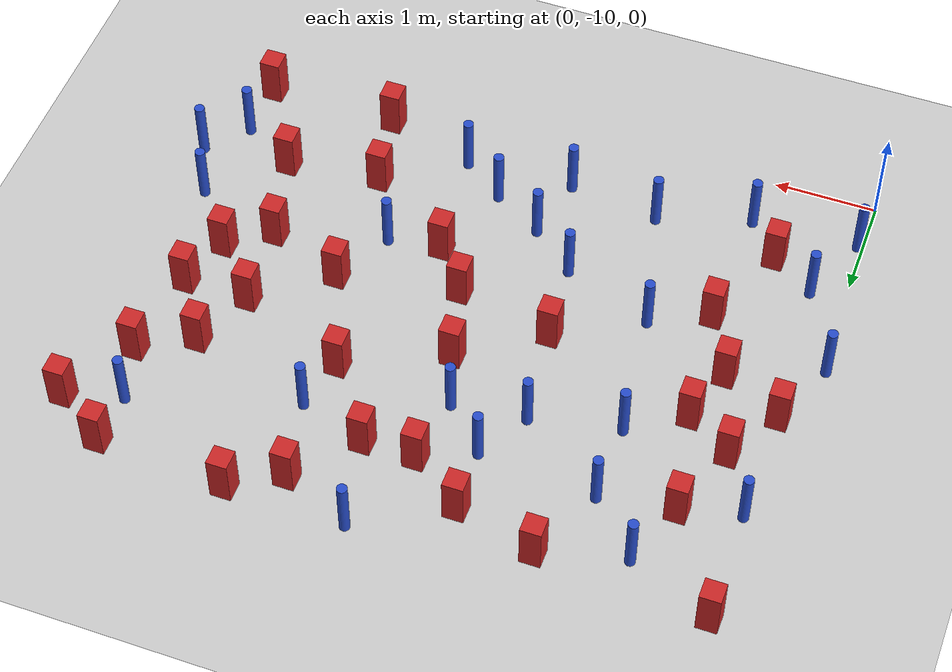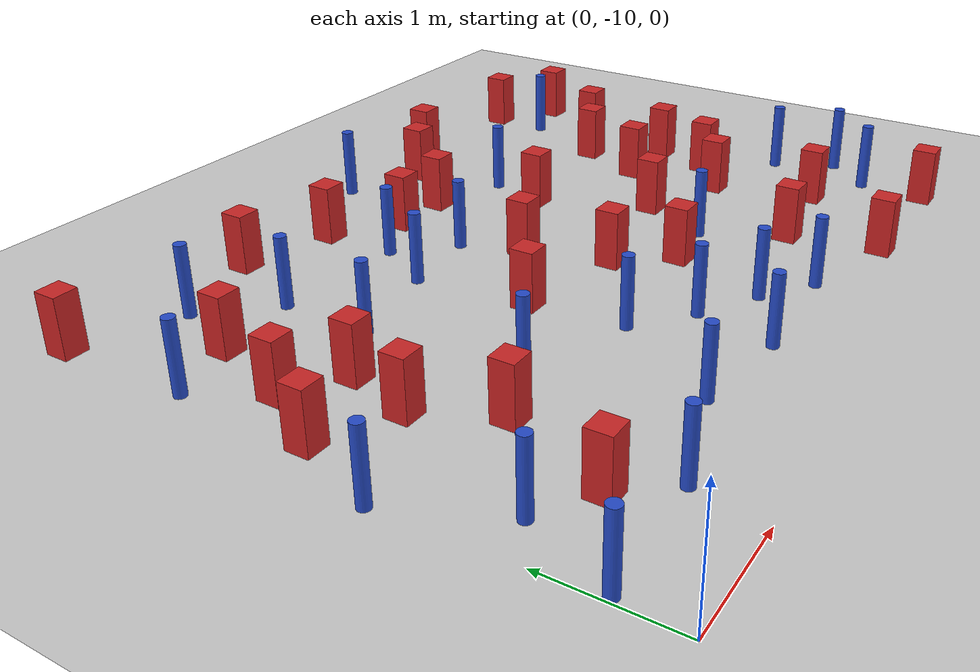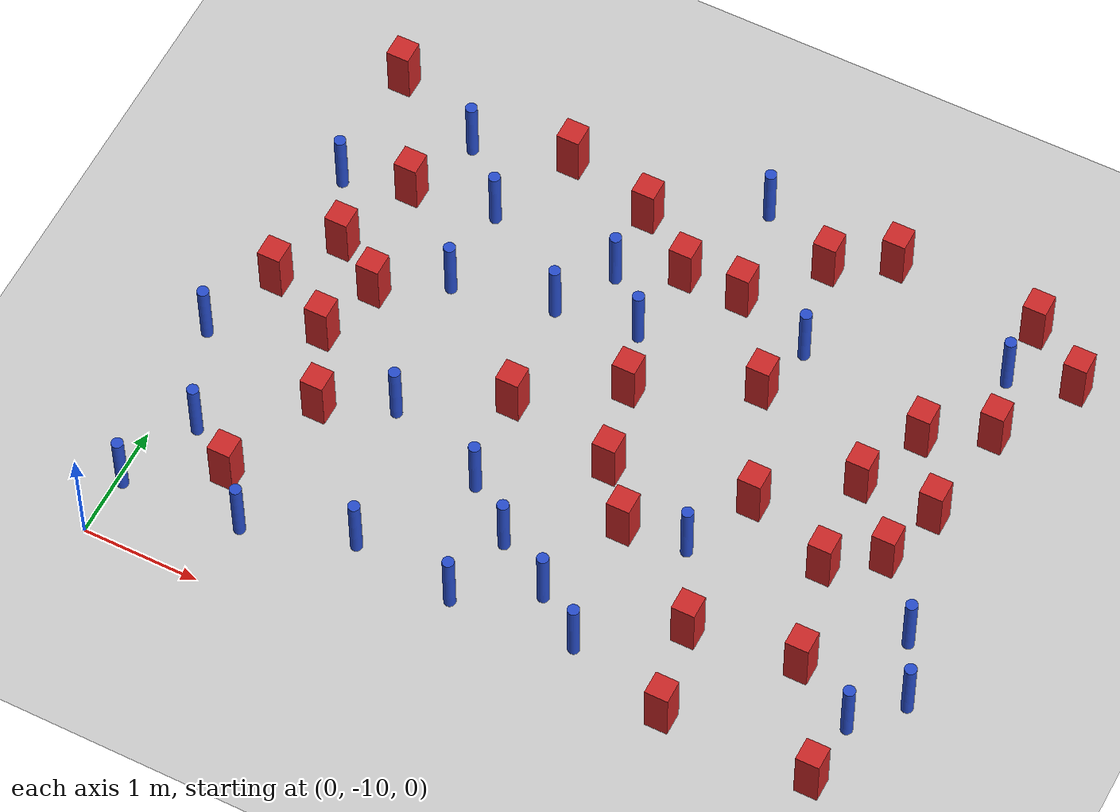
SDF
<sdf version="1.6">
 <world name="default">
  <model name="ground_plane">
   <static>1</static>
   <link name="link">
    <collision name="collision">
     <geometry><plane><normal>0 0 1</normal><size>100 100</size></plane></geometry>
     <surface><friction><ode><mu>100</mu><mu2>50</mu2></ode></friction></surface>
    </collision>
    <visual name="visual">
     <cast_shadows>0</cast_shadows>
     <geometry><plane><normal>0 0 1</normal><size>100 100</size></plane></geometry>
     <material>
      <ambient>1.0 1.0 1.0 1.0</ambient>
      <diffuse>0.8 0.8 0.8 1.0</diffuse>
      <specular>0.01 0.01 0.01 1.000000</specular>
     </material>
    </visual>
   </link>
  </model>
  <model name="pole_obstacle2">
   <static>true</static>
   <pose>0.0482527810993 -9.48582412269 2.88873142074e-08 -9.90536690996e-09 4.60219948962e-07 -1.20965994979e-07</pose>
   <link name="link">
    <pose>0 0 0.3 0 -0 0</pose>
    <inertial>
     <mass>1</mass>
     <inertia><ixx>0.145833</ixx><ixy>0</ixy><ixz>0</ixz><iyy>0.145833</iyy><iyz>0</iyz><izz>0.125</izz></inertia>
    </inertial>
    <collision name="collision">
     <geometry><cylinder><radius>0.05</radius><length>.6</length></cylinder></geometry>
    </collision>
    <visual name="visual">
     <geometry><cylinder><radius>0.05</radius><length>.6</length></cylinder></geometry>
     <material>
      <script><name>Gazebo/Blue</name><uri>file://media/materials/scripts/gazebo.material</uri></script>
     </material>
    </visual>
   </link>
  </model>
  <model name="square_post_obstacle4">
   <static>true</static>
   <pose>4.1547838367 -5.14338606792 8.22691968438e-08 7.22125133819e-06 -7.54495500217e-07 2.29674213826e-05</pose>
   <link name="link">
    <pose>0 0 0.25 0 -0 0</pose>
    <inertial>
     <mass>100</mass>
     <inertia>
      <ixx>0.166667</ixx>
      <ixy>0</ixy>
      <ixz>0</ixz>
      <iyy>0.166667</iyy>
      <iyz>0</iyz>
      <izz>0.166667</izz>
     </inertia>
    </inertial>
    <collision name="collision"><geometry><box><size>.2 .2 .5</size></box></geometry></collision>
    <visual name="visual">
     <geometry><box><size>.2 .2 .5</size></box></geometry>
     <material>
      <script><name>Gazebo/Red</name><uri>file://media/materials/scripts/gazebo.material</uri></script>
     </material>
    </visual>
   </link>
  </model>
  <model name="square_post_obstacle7">
   <static>true</static>
   <pose>1.10828673552 -8.17682160192 8.22691968438e-08 7.22125133819e-06 -7.54495500217e-07 2.29674213826e-05</pose>
   <link name="link">
    <pose>0 0 0.25 0 -0 0</pose>
    <inertial>
     <mass>100</mass>
     <inertia>
      <ixx>0.166667</ixx>
      <ixy>0</ixy>
      <ixz>0</ixz>
      <iyy>0.166667</iyy>
      <iyz>0</iyz>
      <izz>0.166667</izz>
     </inertia>
    </inertial>
    <collision name="collision"><geometry><box><size>.2 .2 .5</size></box></geometry></collision>
    <visual name="visual">
     <geometry><box><size>.2 .2 .5</size></box></geometry>
     <material>
      <script><name>Gazebo/Red</name><uri>file://media/materials/scripts/gazebo.material</uri></script>
     </material>
    </visual>
   </link>
  </model>
  <model name="square_post_obstacle10">
   <static>true</static>
   <pose>5.57316279647 -8.58295188289 8.22691968438e-08 7.22125133819e-06 -7.54495500217e-07 2.29674213826e-05</pose>
   <link name="link">
    <pose>0 0 0.25 0 -0 0</pose>
    <inertial>
     <mass>100</mass>
     <inertia>
      <ixx>0.166667</ixx>
      <ixy>0</ixy>
      <ixz>0</ixz>
      <iyy>0.166667</iyy>
      <iyz>0</iyz>
      <izz>0.166667</izz>
     </inertia>
    </inertial>
    <collision name="collision"><geometry><box><size>.2 .2 .5</size></box></geometry></collision>
    <visual name="visual">
     <geometry><box><size>.2 .2 .5</size></box></geometry>
     <material>
      <script><name>Gazebo/Red</name><uri>file://media/materials/scripts/gazebo.material</uri></script>
     </material>
    </visual>
   </link>
  </model>
  <model name="square_post_obstacle15">
   <static>true</static>
   <pose>5.27767397775 -6.88327287838 8.22691968438e-08 7.2212513382e-06 -7.54495500217e-07 2.29674213826e-05</pose>
   <link name="link">
    <pose>0 0 0.25 0 -0 0</pose>
    <inertial>
     <mass>100</mass>
     <inertia>
      <ixx>0.166667</ixx>
      <ixy>0</ixy>
      <ixz>0</ixz>
      <iyy>0.166667</iyy>
      <iyz>0</iyz>
      <izz>0.166667</izz>
     </inertia>
    </inertial>
    <collision name="collision"><geometry><box><size>.2 .2 .5</size></box></geometry></collision>
    <visual name="visual">
     <geometry><box><size>.2 .2 .5</size></box></geometry>
     <material>
      <script><name>Gazebo/Red</name><uri>file://media/materials/scripts/gazebo.material</uri></script>
     </material>
    </visual>
   </link>
  </model>
  <model name="pole_obstacle14">
   <static>true</static>
   <pose>1.67014155416 -7.91802049187 2.88873142074e-08 -9.90536689852e-09 4.60219948989e-07 -1.2096599496e-07</pose>
   <link name="link">
    <pose>0 0 0.3 0 -0 0</pose>
    <inertial>
     <mass>1</mass>
     <inertia><ixx>0.145833</ixx><ixy>0</ixy><ixz>0</ixz><iyy>0.145833</iyy><iyz>0</iyz><izz>0.125</izz></inertia>
    </inertial>
    <collision name="collision">
     <geometry><cylinder><radius>0.05</radius><length>.6</length></cylinder></geometry>
    </collision>
    <visual name="visual">
     <geometry><cylinder><radius>0.05</radius><length>.6</length></cylinder></geometry>
     <material>
      <script><name>Gazebo/Blue</name><uri>file://media/materials/scripts/gazebo.material</uri></script>
     </material>
    </visual>
   </link>
  </model>
  <model name="pole_obstacle15">
   <static>true</static>
   <pose>-0.0539101587184 -7.93211417524 2.88873142074e-08 -9.90536689643e-09 4.60219948994e-07 -1.20965994959e-07</pose>
   <link name="link">
    <pose>0 0 0.3 0 -0 0</pose>
    <inertial>
     <mass>1</mass>
     <inertia><ixx>0.145833</ixx><ixy>0</ixy><ixz>0</ixz><iyy>0.145833</iyy><iyz>0</iyz><izz>0.125</izz></inertia>
    </inertial>
    <collision name="collision">
     <geometry><cylinder><radius>0.05</radius><length>.6</length></cylinder></geometry>
    </collision>
    <visual name="visual">
     <geometry><cylinder><radius>0.05</radius><length>.6</length></cylinder></geometry>
     <material>
      <script><name>Gazebo/Blue</name><uri>file://media/materials/scripts/gazebo.material</uri></script>
     </material>
    </visual>
   </link>
  </model>
  <model name="square_post_obstacle30">
   <static>true</static>
   <pose>6.08593054036 -9.45582256099 8.22691968438e-08 7.2212513382e-06 -7.54495500217e-07 2.29674213826e-05</pose>
   <link name="link">
    <pose>0 0 0.25 0 -0 0</pose>
    <inertial>
     <mass>100</mass>
     <inertia>
      <ixx>0.166667</ixx>
      <ixy>0</ixy>
      <ixz>0</ixz>
      <iyy>0.166667</iyy>
      <iyz>0</iyz>
      <izz>0.166667</izz>
     </inertia>
    </inertial>
    <collision name="collision"><geometry><box><size>.2 .2 .5</size></box></geometry></collision>
    <visual name="visual">
     <geometry><box><size>.2 .2 .5</size></box></geometry>
     <material>
      <script><name>Gazebo/Red</name><uri>file://media/materials/scripts/gazebo.material</uri></script>
     </material>
    </visual>
   </link>
  </model>
  <model name="pole_obstacle22">
   <static>true</static>
   <pose>2.55716048454 -8.24796795358 2.88873142074e-08 -9.90536692318e-09 4.6021994893e-07 -1.20965994988e-07</pose>
   <link name="link">
    <pose>0 0 0.3 0 -0 0</pose>
    <inertial>
     <mass>1</mass>
     <inertia><ixx>0.145833</ixx><ixy>0</ixy><ixz>0</ixz><iyy>0.145833</iyy><iyz>0</iyz><izz>0.125</izz></inertia>
    </inertial>
    <collision name="collision">
     <geometry><cylinder><radius>0.05</radius><length>.6</length></cylinder></geometry>
    </collision>
    <visual name="visual">
     <geometry><cylinder><radius>0.05</radius><length>.6</length></cylinder></geometry>
     <material>
      <script><name>Gazebo/Blue</name><uri>file://media/materials/scripts/gazebo.material</uri></script>
     </material>
    </visual>
   </link>
  </model>
  <model name="pole_obstacle23">
   <static>true</static>
   <pose>2.64523516485 -5.97530829579 2.88873142074e-08 -9.90536689859e-09 4.60219948989e-07 -1.20965994961e-07</pose>
   <link name="link">
    <pose>0 0 0.3 0 -0 0</pose>
    <inertial>
     <mass>1</mass>
     <inertia><ixx>0.145833</ixx><ixy>0</ixy><ixz>0</ixz><iyy>0.145833</iyy><iyz>0</iyz><izz>0.125</izz></inertia>
    </inertial>
    <collision name="collision">
     <geometry><cylinder><radius>0.05</radius><length>.6</length></cylinder></geometry>
    </collision>
    <visual name="visual">
     <geometry><cylinder><radius>0.05</radius><length>.6</length></cylinder></geometry>
     <material>
      <script><name>Gazebo/Blue</name><uri>file://media/materials/scripts/gazebo.material</uri></script>
     </material>
    </visual>
   </link>
  </model>
  <model name="square_post_obstacle32">
   <static>true</static>
   <pose>3.78396789695 -8.08853005912 8.22691968438e-08 7.22125133819e-06 -7.54495500217e-07 2.29674213826e-05</pose>
   <link name="link">
    <pose>0 0 0.25 0 -0 0</pose>
    <inertial>
     <mass>100</mass>
     <inertia>
      <ixx>0.166667</ixx>
      <ixy>0</ixy>
      <ixz>0</ixz>
      <iyy>0.166667</iyy>
      <iyz>0</iyz>
      <izz>0.166667</izz>
     </inertia>
    </inertial>
    <collision name="collision"><geometry><box><size>.2 .2 .5</size></box></geometry></collision>
    <visual name="visual">
     <geometry><box><size>.2 .2 .5</size></box></geometry>
     <material>
      <script><name>Gazebo/Red</name><uri>file://media/materials/scripts/gazebo.material</uri></script>
     </material>
    </visual>
   </link>
  </model>
  <model name="pole_obstacle32">
   <static>true</static>
   <pose>1.50135985861 -6.66570464025 2.88873142074e-08 -9.90536689852e-09 4.60219948989e-07 -1.2096599496e-07</pose>
   <link name="link">
    <pose>0 0 0.3 0 -0 0</pose>
    <inertial>
     <mass>1</mass>
     <inertia><ixx>0.145833</ixx><ixy>0</ixy><ixz>0</ixz><iyy>0.145833</iyy><iyz>0</iyz><izz>0.125</izz></inertia>
    </inertial>
    <collision name="collision">
     <geometry><cylinder><radius>0.05</radius><length>.6</length></cylinder></geometry>
    </collision>
    <visual name="visual">
     <geometry><cylinder><radius>0.05</radius><length>.6</length></cylinder></geometry>
     <material>
      <script><name>Gazebo/Blue</name><uri>file://media/materials/scripts/gazebo.material</uri></script>
     </material>
    </visual>
   </link>
  </model>
  <model name="pole_obstacle33">
   <static>true</static>
   <pose>1.97488906987 -9.15447193052 2.88873142074e-08 -9.90536690287e-09 4.60219948978e-07 -1.20965994966e-07</pose>
   <link name="link">
    <pose>0 0 0.3 0 -0 0</pose>
    <inertial>
     <mass>1</mass>
     <inertia><ixx>0.145833</ixx><ixy>0</ixy><ixz>0</ixz><iyy>0.145833</iyy><iyz>0</iyz><izz>0.125</izz></inertia>
    </inertial>
    <collision name="collision">
     <geometry><cylinder><radius>0.05</radius><length>.6</length></cylinder></geometry>
    </collision>
    <visual name="visual">
     <geometry><cylinder><radius>0.05</radius><length>.6</length></cylinder></geometry>
     <material>
      <script><name>Gazebo/Blue</name><uri>file://media/materials/scripts/gazebo.material</uri></script>
     </material>
    </visual>
   </link>
  </model>
  <model name="pole_obstacle35">
   <static>true</static>
   <pose>3.9216114599 -9.21039047906 2.88873142074e-08 -9.90536692318e-09 4.6021994893e-07 -1.20965994988e-07</pose>
   <link name="link">
    <pose>0 0 0.3 0 -0 0</pose>
    <inertial>
     <mass>1</mass>
     <inertia><ixx>0.145833</ixx><ixy>0</ixy><ixz>0</ixz><iyy>0.145833</iyy><iyz>0</iyz><izz>0.125</izz></inertia>
    </inertial>
    <collision name="collision">
     <geometry><cylinder><radius>0.05</radius><length>.6</length></cylinder></geometry>
    </collision>
    <visual name="visual">
     <geometry><cylinder><radius>0.05</radius><length>.6</length></cylinder></geometry>
     <material>
      <script><name>Gazebo/Blue</name><uri>file://media/materials/scripts/gazebo.material</uri></script>
     </material>
    </visual>
   </link>
  </model>
  <model name="pole_obstacle38">
   <static>true</static>
   <pose>6.21787386689 -7.98873198611 2.88873142074e-08 -9.9053669097e-09 4.60219948962e-07 -1.20965994979e-07</pose>
   <link name="link">
    <pose>0 0 0.3 0 -0 0</pose>
    <inertial>
     <mass>1</mass>
     <inertia><ixx>0.145833</ixx><ixy>0</ixy><ixz>0</ixz><iyy>0.145833</iyy><iyz>0</iyz><izz>0.125</izz></inertia>
    </inertial>
    <collision name="collision">
     <geometry><cylinder><radius>0.05</radius><length>.6</length></cylinder></geometry>
    </collision>
    <visual name="visual">
     <geometry><cylinder><radius>0.05</radius><length>.6</length></cylinder></geometry>
     <material>
      <script><name>Gazebo/Blue</name><uri>file://media/materials/scripts/gazebo.material</uri></script>
     </material>
    </visual>
   </link>
  </model>
  <model name="square_post_obstacle42">
   <static>true</static>
   <pose>0.806359708077 -7.55478297574 8.22691968438e-08 7.22125133819e-06 -7.54495500217e-07 2.29674213826e-05</pose>
   <link name="link">
    <pose>0 0 0.25 0 -0 0</pose>
    <inertial>
     <mass>100</mass>
     <inertia>
      <ixx>0.166667</ixx>
      <ixy>0</ixy>
      <ixz>0</ixz>
      <iyy>0.166667</iyy>
      <iyz>0</iyz>
      <izz>0.166667</izz>
     </inertia>
    </inertial>
    <collision name="collision"><geometry><box><size>.2 .2 .5</size></box></geometry></collision>
    <visual name="visual">
     <geometry><box><size>.2 .2 .5</size></box></geometry>
     <material>
      <script><name>Gazebo/Red</name><uri>file://media/materials/scripts/gazebo.material</uri></script>
     </material>
    </visual>
   </link>
  </model>
  <model name="pole_obstacle49">
   <static>true</static>
   <pose>1.50312365343 -5.89045598011 2.88873142074e-08 -9.90536689852e-09 4.60219948989e-07 -1.2096599496e-07</pose>
   <link name="link">
    <pose>0 0 0.3 0 -0 0</pose>
    <inertial>
     <mass>1</mass>
     <inertia><ixx>0.145833</ixx><ixy>0</ixy><ixz>0</ixz><iyy>0.145833</iyy><iyz>0</iyz><izz>0.125</izz></inertia>
    </inertial>
    <collision name="collision">
     <geometry><cylinder><radius>0.05</radius><length>.6</length></cylinder></geometry>
    </collision>
    <visual name="visual">
     <geometry><cylinder><radius>0.05</radius><length>.6</length></cylinder></geometry>
     <material>
      <script><name>Gazebo/Blue</name><uri>file://media/materials/scripts/gazebo.material</uri></script>
     </material>
    </visual>
   </link>
  </model>
  <model name="square_post_obstacle57">
   <static>true</static>
   <pose>4.65453524155 -8.69829771946 8.22691968438e-08 7.22125133819e-06 -7.54495500217e-07 2.29674213826e-05</pose>
   <link name="link">
    <pose>0 0 0.25 0 -0 0</pose>
    <inertial>
     <mass>100</mass>
     <inertia>
      <ixx>0.166667</ixx>
      <ixy>0</ixy>
      <ixz>0</ixz>
      <iyy>0.166667</iyy>
      <iyz>0</iyz>
      <izz>0.166667</izz>
     </inertia>
    </inertial>
    <collision name="collision"><geometry><box><size>.2 .2 .5</size></box></geometry></collision>
    <visual name="visual">
     <geometry><box><size>.2 .2 .5</size></box></geometry>
     <material>
      <script><name>Gazebo/Red</name><uri>file://media/materials/scripts/gazebo.material</uri></script>
     </material>
    </visual>
   </link>
  </model>
  <model name="square_post_obstacle61">
   <static>true</static>
   <pose>4.63550459369 -4.85734156633 8.22691968438e-08 7.22125133819e-06 -7.54495500217e-07 2.29674213826e-05</pose>
   <link name="link">
    <pose>0 0 0.25 0 -0 0</pose>
    <inertial>
     <mass>100</mass>
     <inertia>
      <ixx>0.166667</ixx>
      <ixy>0</ixy>
      <ixz>0</ixz>
      <iyy>0.166667</iyy>
      <iyz>0</iyz>
      <izz>0.166667</izz>
     </inertia>
    </inertial>
    <collision name="collision"><geometry><box><size>.2 .2 .5</size></box></geometry></collision>
    <visual name="visual">
     <geometry><box><size>.2 .2 .5</size></box></geometry>
     <material>
      <script><name>Gazebo/Red</name><uri>file://media/materials/scripts/gazebo.material</uri></script>
     </material>
    </visual>
   </link>
  </model>
  <model name="pole_obstacle59">
   <static>true</static>
   <pose>1.01769148292 -5.36786970817 2.88873142074e-08 -9.90536689905e-09 4.60219948988e-07 -1.20965994961e-07</pose>
   <link name="link">
    <pose>0 0 0.3 0 -0 0</pose>
    <inertial>
     <mass>1</mass>
     <inertia><ixx>0.145833</ixx><ixy>0</ixy><ixz>0</ixz><iyy>0.145833</iyy><iyz>0</iyz><izz>0.125</izz></inertia>
    </inertial>
    <collision name="collision">
     <geometry><cylinder><radius>0.05</radius><length>.6</length></cylinder></geometry>
    </collision>
    <visual name="visual">
     <geometry><cylinder><radius>0.05</radius><length>.6</length></cylinder></geometry>
     <material>
      <script><name>Gazebo/Blue</name><uri>file://media/materials/scripts/gazebo.material</uri></script>
     </material>
    </visual>
   </link>
  </model>
  <model name="pole_obstacle63">
   <static>true</static>
   <pose>0.217114263705 -6.14041425336 2.88873142074e-08 -9.90536689491e-09 4.60219948997e-07 -1.20965994955e-07</pose>
   <link name="link">
    <pose>0 0 0.3 0 -0 0</pose>
    <inertial>
     <mass>1</mass>
     <inertia><ixx>0.145833</ixx><ixy>0</ixy><ixz>0</ixz><iyy>0.145833</iyy><iyz>0</iyz><izz>0.125</izz></inertia>
    </inertial>
    <collision name="collision">
     <geometry><cylinder><radius>0.05</radius><length>.6</length></cylinder></geometry>
    </collision>
    <visual name="visual">
     <geometry><cylinder><radius>0.05</radius><length>.6</length></cylinder></geometry>
     <material>
      <script><name>Gazebo/Blue</name><uri>file://media/materials/scripts/gazebo.material</uri></script>
     </material>
    </visual>
   </link>
  </model>
  <model name="pole_obstacle68">
   <static>true</static>
   <pose>6.11851035663 -8.89164394044 2.88873142074e-08 -9.9053668967e-09 4.60219948993e-07 -1.20965994957e-07</pose>
   <link name="link">
    <pose>0 0 0.3 0 -0 0</pose>
    <inertial>
     <mass>1</mass>
     <inertia><ixx>0.145833</ixx><ixy>0</ixy><ixz>0</ixz><iyy>0.145833</iyy><iyz>0</iyz><izz>0.125</izz></inertia>
    </inertial>
    <collision name="collision">
     <geometry><cylinder><radius>0.05</radius><length>.6</length></cylinder></geometry>
    </collision>
    <visual name="visual">
     <geometry><cylinder><radius>0.05</radius><length>.6</length></cylinder></geometry>
     <material>
      <script><name>Gazebo/Blue</name><uri>file://media/materials/scripts/gazebo.material</uri></script>
     </material>
    </visual>
   </link>
  </model>
  <model name="square_post_obstacle73">
   <static>true</static>
   <pose>0.758849233143 -9.05508947337 8.22691968438e-08 7.22125133819e-06 -7.54495500217e-07 2.29674213826e-05</pose>
   <link name="link">
    <pose>0 0 0.25 0 -0 0</pose>
    <inertial>
     <mass>100</mass>
     <inertia>
      <ixx>0.166667</ixx>
      <ixy>0</ixy>
      <ixz>0</ixz>
      <iyy>0.166667</iyy>
      <iyz>0</iyz>
      <izz>0.166667</izz>
     </inertia>
    </inertial>
    <collision name="collision"><geometry><box><size>.2 .2 .5</size></box></geometry></collision>
    <visual name="visual">
     <geometry><box><size>.2 .2 .5</size></box></geometry>
     <material>
      <script><name>Gazebo/Red</name><uri>file://media/materials/scripts/gazebo.material</uri></script>
     </material>
    </visual>
   </link>
  </model>
  <model name="square_post_obstacle74">
   <static>true</static>
   <pose>6.4251306519 -5.28233334987 8.22691968438e-08 7.2212513382e-06 -7.54495500217e-07 2.29674213826e-05</pose>
   <link name="link">
    <pose>0 0 0.25 0 -0 0</pose>
    <inertial>
     <mass>100</mass>
     <inertia>
      <ixx>0.166667</ixx>
      <ixy>0</ixy>
      <ixz>0</ixz>
      <iyy>0.166667</iyy>
      <iyz>0</iyz>
      <izz>0.166667</izz>
     </inertia>
    </inertial>
    <collision name="collision"><geometry><box><size>.2 .2 .5</size></box></geometry></collision>
    <visual name="visual">
     <geometry><box><size>.2 .2 .5</size></box></geometry>
     <material>
      <script><name>Gazebo/Red</name><uri>file://media/materials/scripts/gazebo.material</uri></script>
     </material>
    </visual>
   </link>
  </model>
  <model name="pole_obstacle79">
   <static>true</static>
   <pose>2.86389907536 -9.2681062498 2.88873142074e-08 -9.90536692318e-09 4.6021994893e-07 -1.20965994988e-07</pose>
   <link name="link">
    <pose>0 0 0.3 0 -0 0</pose>
    <inertial>
     <mass>1</mass>
     <inertia><ixx>0.145833</ixx><ixy>0</ixy><ixz>0</ixz><iyy>0.145833</iyy><iyz>0</iyz><izz>0.125</izz></inertia>
    </inertial>
    <collision name="collision">
     <geometry><cylinder><radius>0.05</radius><length>.6</length></cylinder></geometry>
    </collision>
    <visual name="visual">
     <geometry><cylinder><radius>0.05</radius><length>.6</length></cylinder></geometry>
     <material>
      <script><name>Gazebo/Blue</name><uri>file://media/materials/scripts/gazebo.material</uri></script>
     </material>
    </visual>
   </link>
  </model>
  <model name="pole_obstacle80">
   <static>true</static>
   <pose>4.31106192677 -8.02455551685 2.88873142074e-08 -9.9053669103e-09 4.60219948961e-07 -1.20965994981e-07</pose>
   <link name="link">
    <pose>0 0 0.3 0 -0 0</pose>
    <inertial>
     <mass>1</mass>
     <inertia><ixx>0.145833</ixx><ixy>0</ixy><ixz>0</ixz><iyy>0.145833</iyy><iyz>0</iyz><izz>0.125</izz></inertia>
    </inertial>
    <collision name="collision">
     <geometry><cylinder><radius>0.05</radius><length>.6</length></cylinder></geometry>
    </collision>
    <visual name="visual">
     <geometry><cylinder><radius>0.05</radius><length>.6</length></cylinder></geometry>
     <material>
      <script><name>Gazebo/Blue</name><uri>file://media/materials/scripts/gazebo.material</uri></script>
     </material>
    </visual>
   </link>
  </model>
  <model name="pole_obstacle92">
   <static>true</static>
   <pose>3.063007387 -6.39750066659 2.88873142074e-08 -9.90536689859e-09 4.60219948989e-07 -1.20965994961e-07</pose>
   <link name="link">
    <pose>0 0 0.3 0 -0 0</pose>
    <inertial>
     <mass>1</mass>
     <inertia><ixx>0.145833</ixx><ixy>0</ixy><ixz>0</ixz><iyy>0.145833</iyy><iyz>0</iyz><izz>0.125</izz></inertia>
    </inertial>
    <collision name="collision">
     <geometry><cylinder><radius>0.05</radius><length>.6</length></cylinder></geometry>
    </collision>
    <visual name="visual">
     <geometry><cylinder><radius>0.05</radius><length>.6</length></cylinder></geometry>
     <material>
      <script><name>Gazebo/Blue</name><uri>file://media/materials/scripts/gazebo.material</uri></script>
     </material>
    </visual>
   </link>
  </model>
  <model name="square_post_obstacle84">
   <static>true</static>
   <pose>5.91437450394 -6.88342689083 8.22691968438e-08 7.2212513382e-06 -7.54495500217e-07 2.29674213826e-05</pose>
   <link name="link">
    <pose>0 0 0.25 0 -0 0</pose>
    <inertial>
     <mass>100</mass>
     <inertia>
      <ixx>0.166667</ixx>
      <ixy>0</ixy>
      <ixz>0</ixz>
      <iyy>0.166667</iyy>
      <iyz>0</iyz>
      <izz>0.166667</izz>
     </inertia>
    </inertial>
    <collision name="collision"><geometry><box><size>.2 .2 .5</size></box></geometry></collision>
    <visual name="visual">
     <geometry><box><size>.2 .2 .5</size></box></geometry>
     <material>
      <script><name>Gazebo/Red</name><uri>file://media/materials/scripts/gazebo.material</uri></script>
     </material>
    </visual>
   </link>
  </model>
  <model name="square_post_obstacle85">
   <static>true</static>
   <pose>4.59707027748 -7.42151297444 8.22691968438e-08 7.22125133819e-06 -7.54495500217e-07 2.29674213826e-05</pose>
   <link name="link">
    <pose>0 0 0.25 0 -0 0</pose>
    <inertial>
     <mass>100</mass>
     <inertia>
      <ixx>0.166667</ixx>
      <ixy>0</ixy>
      <ixz>0</ixz>
      <iyy>0.166667</iyy>
      <iyz>0</iyz>
      <izz>0.166667</izz>
     </inertia>
    </inertial>
    <collision name="collision"><geometry><box><size>.2 .2 .5</size></box></geometry></collision>
    <visual name="visual">
     <geometry><box><size>.2 .2 .5</size></box></geometry>
     <material>
      <script><name>Gazebo/Red</name><uri>file://media/materials/scripts/gazebo.material</uri></script>
     </material>
    </visual>
   </link>
  </model>
  <model name="pole_obstacle101">
   <static>true</static>
   <pose>3.48540397908 -4.85379402383 2.88873142074e-08 -9.90536689859e-09 4.60219948989e-07 -1.20965994961e-07</pose>
   <link name="link">
    <pose>0 0 0.3 0 -0 0</pose>
    <inertial>
     <mass>1</mass>
     <inertia><ixx>0.145833</ixx><ixy>0</ixy><ixz>0</ixz><iyy>0.145833</iyy><iyz>0</iyz><izz>0.125</izz></inertia>
    </inertial>
    <collision name="collision">
     <geometry><cylinder><radius>0.05</radius><length>.6</length></cylinder></geometry>
    </collision>
    <visual name="visual">
     <geometry><cylinder><radius>0.05</radius><length>.6</length></cylinder></geometry>
     <material>
      <script><name>Gazebo/Blue</name><uri>file://media/materials/scripts/gazebo.material</uri></script>
     </material>
    </visual>
   </link>
  </model>
  <model name="square_post_obstacle91">
   <static>true</static>
   <pose>6.03104982464 -5.9940117508 8.22691968438e-08 7.22125133819e-06 -7.54495500217e-07 2.29674213826e-05</pose>
   <link name="link">
    <pose>0 0 0.25 0 -0 0</pose>
    <inertial>
     <mass>100</mass>
     <inertia>
      <ixx>0.166667</ixx>
      <ixy>0</ixy>
      <ixz>0</ixz>
      <iyy>0.166667</iyy>
      <iyz>0</iyz>
      <izz>0.166667</izz>
     </inertia>
    </inertial>
    <collision name="collision"><geometry><box><size>.2 .2 .5</size></box></geometry></collision>
    <visual name="visual">
     <geometry><box><size>.2 .2 .5</size></box></geometry>
     <material>
      <script><name>Gazebo/Red</name><uri>file://media/materials/scripts/gazebo.material</uri></script>
     </material>
    </visual>
   </link>
  </model>
  <model name="pole_obstacle105">
   <static>true</static>
   <pose>4.32934292247 -5.94612412202 2.88873142074e-08 -9.90536690842e-09 4.60219948965e-07 -1.20965994976e-07</pose>
   <link name="link">
    <pose>0 0 0.3 0 -0 0</pose>
    <inertial>
     <mass>1</mass>
     <inertia><ixx>0.145833</ixx><ixy>0</ixy><ixz>0</ixz><iyy>0.145833</iyy><iyz>0</iyz><izz>0.125</izz></inertia>
    </inertial>
    <collision name="collision">
     <geometry><cylinder><radius>0.05</radius><length>.6</length></cylinder></geometry>
    </collision>
    <visual name="visual">
     <geometry><cylinder><radius>0.05</radius><length>.6</length></cylinder></geometry>
     <material>
      <script><name>Gazebo/Blue</name><uri>file://media/materials/scripts/gazebo.material</uri></script>
     </material>
    </visual>
   </link>
  </model>
  <model name="square_post_obstacle96">
   <static>true</static>
   <pose>0.200064848413 -5.02807935954 8.22691968438e-08 7.2212513382e-06 -7.54495500217e-07 2.29674213826e-05</pose>
   <link name="link">
    <pose>0 0 0.25 0 -0 0</pose>
    <inertial>
     <mass>100</mass>
     <inertia>
      <ixx>0.166667</ixx>
      <ixy>0</ixy>
      <ixz>0</ixz>
      <iyy>0.166667</iyy>
      <iyz>0</iyz>
      <izz>0.166667</izz>
     </inertia>
    </inertial>
    <collision name="collision"><geometry><box><size>.2 .2 .5</size></box></geometry></collision>
    <visual name="visual">
     <geometry><box><size>.2 .2 .5</size></box></geometry>
     <material>
      <script><name>Gazebo/Red</name><uri>file://media/materials/scripts/gazebo.material</uri></script>
     </material>
    </visual>
   </link>
  </model>
  <model name="square_post_obstacle100">
   <static>true</static>
   <pose>2.62021808801 -5.34437650461 8.22691968438e-08 7.22125133819e-06 -7.54495500217e-07 2.29674213826e-05</pose>
   <link name="link">
    <pose>0 0 0.25 0 -0 0</pose>
    <inertial>
     <mass>100</mass>
     <inertia>
      <ixx>0.166667</ixx>
      <ixy>0</ixy>
      <ixz>0</ixz>
      <iyy>0.166667</iyy>
      <iyz>0</iyz>
      <izz>0.166667</izz>
     </inertia>
    </inertial>
    <collision name="collision"><geometry><box><size>.2 .2 .5</size></box></geometry></collision>
    <visual name="visual">
     <geometry><box><size>.2 .2 .5</size></box></geometry>
     <material>
      <script><name>Gazebo/Red</name><uri>file://media/materials/scripts/gazebo.material</uri></script>
     </material>
    </visual>
   </link>
  </model>
  <model name="square_post_obstacle101">
   <static>true</static>
   <pose>4.80757962047 -9.46045113803 8.22691968438e-08 7.2212513382e-06 -7.54495500217e-07 2.29674213826e-05</pose>
   <link name="link">
    <pose>0 0 0.25 0 -0 0</pose>
    <inertial>
     <mass>100</mass>
     <inertia>
      <ixx>0.166667</ixx>
      <ixy>0</ixy>
      <ixz>0</ixz>
      <iyy>0.166667</iyy>
      <iyz>0</iyz>
      <izz>0.166667</izz>
     </inertia>
    </inertial>
    <collision name="collision"><geometry><box><size>.2 .2 .5</size></box></geometry></collision>
    <visual name="visual">
     <geometry><box><size>.2 .2 .5</size></box></geometry>
     <material>
      <script><name>Gazebo/Red</name><uri>file://media/materials/scripts/gazebo.material</uri></script>
     </material>
    </visual>
   </link>
  </model>
  <model name="square_post_obstacle109">
   <static>true</static>
   <pose>5.5229135997 -6.27981326597 8.22691968438e-08 7.2212513382e-06 -7.54495500217e-07 2.29674213826e-05</pose>
   <link name="link">
    <pose>0 0 0.25 0 -0 0</pose>
    <inertial>
     <mass>100</mass>
     <inertia>
      <ixx>0.166667</ixx>
      <ixy>0</ixy>
      <ixz>0</ixz>
      <iyy>0.166667</iyy>
      <iyz>0</iyz>
      <izz>0.166667</izz>
     </inertia>
    </inertial>
    <collision name="collision"><geometry><box><size>.2 .2 .5</size></box></geometry></collision>
    <visual name="visual">
     <geometry><box><size>.2 .2 .5</size></box></geometry>
     <material>
      <script><name>Gazebo/Red</name><uri>file://media/materials/scripts/gazebo.material</uri></script>
     </material>
    </visual>
   </link>
  </model>
  <model name="pole_obstacle125">
   <static>true</static>
   <pose>5.89052043747 -5.44907918695 2.88873142074e-08 -9.90536690842e-09 4.60219948965e-07 -1.20965994976e-07</pose>
   <link name="link">
    <pose>0 0 0.3 0 -0 0</pose>
    <inertial>
     <mass>1</mass>
     <inertia><ixx>0.145833</ixx><ixy>0</ixy><ixz>0</ixz><iyy>0.145833</iyy><iyz>0</iyz><izz>0.125</izz></inertia>
    </inertial>
    <collision name="collision">
     <geometry><cylinder><radius>0.05</radius><length>.6</length></cylinder></geometry>
    </collision>
    <visual name="visual">
     <geometry><cylinder><radius>0.05</radius><length>.6</length></cylinder></geometry>
     <material>
      <script><name>Gazebo/Blue</name><uri>file://media/materials/scripts/gazebo.material</uri></script>
     </material>
    </visual>
   </link>
  </model>
  <model name="pole_obstacle130">
   <static>true</static>
   <pose>2.35563240892 -6.48273523572 2.88873142074e-08 -9.90536689859e-09 4.60219948989e-07 -1.20965994961e-07</pose>
   <link name="link">
    <pose>0 0 0.3 0 -0 0</pose>
    <inertial>
     <mass>1</mass>
     <inertia><ixx>0.145833</ixx><ixy>0</ixy><ixz>0</ixz><iyy>0.145833</iyy><iyz>0</iyz><izz>0.125</izz></inertia>
    </inertial>
    <collision name="collision">
     <geometry><cylinder><radius>0.05</radius><length>.6</length></cylinder></geometry>
    </collision>
    <visual name="visual">
     <geometry><cylinder><radius>0.05</radius><length>.6</length></cylinder></geometry>
     <material>
      <script><name>Gazebo/Blue</name><uri>file://media/materials/scripts/gazebo.material</uri></script>
     </material>
    </visual>
   </link>
  </model>
  <model name="square_post_obstacle117">
   <static>true</static>
   <pose>3.43407496094 -7.64625536365 8.22691968438e-08 7.2212513382e-06 -7.54495500217e-07 2.29674213826e-05</pose>
   <link name="link">
    <pose>0 0 0.25 0 -0 0</pose>
    <inertial>
     <mass>100</mass>
     <inertia>
      <ixx>0.166667</ixx>
      <ixy>0</ixy>
      <ixz>0</ixz>
      <iyy>0.166667</iyy>
      <iyz>0</iyz>
      <izz>0.166667</izz>
     </inertia>
    </inertial>
    <collision name="collision"><geometry><box><size>.2 .2 .5</size></box></geometry></collision>
    <visual name="visual">
     <geometry><box><size>.2 .2 .5</size></box></geometry>
     <material>
      <script><name>Gazebo/Red</name><uri>file://media/materials/scripts/gazebo.material</uri></script>
     </material>
    </visual>
   </link>
  </model>
  <model name="square_post_obstacle128">
   <static>true</static>
   <pose>2.47255190409 -7.44751711972 8.22691968438e-08 7.22125133819e-06 -7.54495500217e-07 2.29674213826e-05</pose>
   <link name="link">
    <pose>0 0 0.25 0 -0 0</pose>
    <inertial>
     <mass>100</mass>
     <inertia>
      <ixx>0.166667</ixx>
      <ixy>0</ixy>
      <ixz>0</ixz>
      <iyy>0.166667</iyy>
      <iyz>0</iyz>
      <izz>0.166667</izz>
     </inertia>
    </inertial>
    <collision name="collision"><geometry><box><size>.2 .2 .5</size></box></geometry></collision>
    <visual name="visual">
     <geometry><box><size>.2 .2 .5</size></box></geometry>
     <material>
      <script><name>Gazebo/Red</name><uri>file://media/materials/scripts/gazebo.material</uri></script>
     </material>
    </visual>
   </link>
  </model>
  <model name="square_post_obstacle133">
   <static>true</static>
   <pose>0.533499905684 -6.71168644189 8.22691968438e-08 7.2212513382e-06 -7.54495500217e-07 2.29674213826e-05</pose>
   <link name="link">
    <pose>0 0 0.25 0 -0 0</pose>
    <inertial>
     <mass>100</mass>
     <inertia>
      <ixx>0.166667</ixx>
      <ixy>0</ixy>
      <ixz>0</ixz>
      <iyy>0.166667</iyy>
      <iyz>0</iyz>
      <izz>0.166667</izz>
     </inertia>
    </inertial>
    <collision name="collision"><geometry><box><size>.2 .2 .5</size></box></geometry></collision>
    <visual name="visual">
     <geometry><box><size>.2 .2 .5</size></box></geometry>
     <material>
      <script><name>Gazebo/Red</name><uri>file://media/materials/scripts/gazebo.material</uri></script>
     </material>
    </visual>
   </link>
  </model>
  <model name="square_post_obstacle140">
   <static>true</static>
   <pose>4.19562602445 -6.45092182549 8.22691968438e-08 7.2212513382e-06 -7.54495500217e-07 2.29674213826e-05</pose>
   <link name="link">
    <pose>0 0 0.25 0 -0 0</pose>
    <inertial>
     <mass>100</mass>
     <inertia>
      <ixx>0.166667</ixx>
      <ixy>0</ixy>
      <ixz>0</ixz>
      <iyy>0.166667</iyy>
      <iyz>0</iyz>
      <izz>0.166667</izz>
     </inertia>
    </inertial>
    <collision name="collision"><geometry><box><size>.2 .2 .5</size></box></geometry></collision>
    <visual name="visual">
     <geometry><box><size>.2 .2 .5</size></box></geometry>
     <material>
      <script><name>Gazebo/Red</name><uri>file://media/materials/scripts/gazebo.material</uri></script>
     </material>
    </visual>
   </link>
  </model>
  <model name="square_post_obstacle143">
   <static>true</static>
   <pose>3.14982618388 -5.72607759885 8.22691968438e-08 7.22125133819e-06 -7.54495500217e-07 2.29674213826e-05</pose>
   <link name="link">
    <pose>0 0 0.25 0 -0 0</pose>
    <inertial>
     <mass>100</mass>
     <inertia>
      <ixx>0.166667</ixx>
      <ixy>0</ixy>
      <ixz>0</ixz>
      <iyy>0.166667</iyy>
      <iyz>0</iyz>
      <izz>0.166667</izz>
     </inertia>
    </inertial>
    <collision name="collision"><geometry><box><size>.2 .2 .5</size></box></geometry></collision>
    <visual name="visual">
     <geometry><box><size>.2 .2 .5</size></box></geometry>
     <material>
      <script><name>Gazebo/Red</name><uri>file://media/materials/scripts/gazebo.material</uri></script>
     </material>
    </visual>
   </link>
  </model>
  <model name="pole_obstacle155">
   <static>true</static>
   <pose>3.00259032401 -8.61774365209 2.88873142074e-08 -9.90536692318e-09 4.6021994893e-07 -1.20965994988e-07</pose>
   <link name="link">
    <pose>0 0 0.3 0 -0 0</pose>
    <inertial>
     <mass>1</mass>
     <inertia><ixx>0.145833</ixx><ixy>0</ixy><ixz>0</ixz><iyy>0.145833</iyy><iyz>0</iyz><izz>0.125</izz></inertia>
    </inertial>
    <collision name="collision">
     <geometry><cylinder><radius>0.05</radius><length>.6</length></cylinder></geometry>
    </collision>
    <visual name="visual">
     <geometry><cylinder><radius>0.05</radius><length>.6</length></cylinder></geometry>
     <material>
      <script><name>Gazebo/Blue</name><uri>file://media/materials/scripts/gazebo.material</uri></script>
     </material>
    </visual>
   </link>
  </model>
  <model name="square_post_obstacle151">
   <static>true</static>
   <pose>5.34487192153 -7.70911137376 8.22691968438e-08 7.2212513382e-06 -7.54495500217e-07 2.29674213826e-05</pose>
   <link name="link">
    <pose>0 0 0.25 0 -0 0</pose>
    <inertial>
     <mass>100</mass>
     <inertia>
      <ixx>0.166667</ixx>
      <ixy>0</ixy>
      <ixz>0</ixz>
      <iyy>0.166667</iyy>
      <iyz>0</iyz>
      <izz>0.166667</izz>
     </inertia>
    </inertial>
    <collision name="collision"><geometry><box><size>.2 .2 .5</size></box></geometry></collision>
    <visual name="visual">
     <geometry><box><size>.2 .2 .5</size></box></geometry>
     <material>
      <script><name>Gazebo/Red</name><uri>file://media/materials/scripts/gazebo.material</uri></script>
     </material>
    </visual>
   </link>
  </model>
  <model name="square_post_obstacle153">
   <static>true</static>
   <pose>5.75377366642 -7.41441589909 8.22691968438e-08 7.22125133819e-06 -7.54495500217e-07 2.29674213826e-05</pose>
   <link name="link">
    <pose>0 0 0.25 0 -0 0</pose>
    <inertial>
     <mass>100</mass>
     <inertia>
      <ixx>0.166667</ixx>
      <ixy>0</ixy>
      <ixz>0</ixz>
      <iyy>0.166667</iyy>
      <iyz>0</iyz>
      <izz>0.166667</izz>
     </inertia>
    </inertial>
    <collision name="collision"><geometry><box><size>.2 .2 .5</size></box></geometry></collision>
    <visual name="visual">
     <geometry><box><size>.2 .2 .5</size></box></geometry>
     <material>
      <script><name>Gazebo/Red</name><uri>file://media/materials/scripts/gazebo.material</uri></script>
     </material>
    </visual>
   </link>
  </model>
  <model name="pole_obstacle162">
   <static>true</static>
   <pose>1.08021752439 -9.43819072734 2.88873142074e-08 -9.90536690474e-09 4.60219948974e-07 -1.2096599497e-07</pose>
   <link name="link">
    <pose>0 0 0.3 0 -0 0</pose>
    <inertial>
     <mass>1</mass>
     <inertia><ixx>0.145833</ixx><ixy>0</ixy><ixz>0</ixz><iyy>0.145833</iyy><iyz>0</iyz><izz>0.125</izz></inertia>
    </inertial>
    <collision name="collision">
     <geometry><cylinder><radius>0.05</radius><length>.6</length></cylinder></geometry>
    </collision>
    <visual name="visual">
     <geometry><cylinder><radius>0.05</radius><length>.6</length></cylinder></geometry>
     <material>
      <script><name>Gazebo/Blue</name><uri>file://media/materials/scripts/gazebo.material</uri></script>
     </material>
    </visual>
   </link>
  </model>
  <model name="square_post_obstacle155">
   <static>true</static>
   <pose>0.974629602402 -6.99871102372 8.22691968438e-08 7.2212513382e-06 -7.54495500217e-07 2.29674213826e-05</pose>
   <link name="link">
    <pose>0 0 0.25 0 -0 0</pose>
    <inertial>
     <mass>100</mass>
     <inertia>
      <ixx>0.166667</ixx>
      <ixy>0</ixy>
      <ixz>0</ixz>
      <iyy>0.166667</iyy>
      <iyz>0</iyz>
      <izz>0.166667</izz>
     </inertia>
    </inertial>
    <collision name="collision"><geometry><box><size>.2 .2 .5</size></box></geometry></collision>
    <visual name="visual">
     <geometry><box><size>.2 .2 .5</size></box></geometry>
     <material>
      <script><name>Gazebo/Red</name><uri>file://media/materials/scripts/gazebo.material</uri></script>
     </material>
    </visual>
   </link>
  </model>
  <model name="square_post_obstacle157">
   <static>true</static>
   <pose>5.91027307546 -4.92912009714 8.22691968438e-08 7.22125133819e-06 -7.54495500217e-07 2.29674213826e-05</pose>
   <link name="link">
    <pose>0 0 0.25 0 -0 0</pose>
    <inertial>
     <mass>100</mass>
     <inertia>
      <ixx>0.166667</ixx>
      <ixy>0</ixy>
      <ixz>0</ixz>
      <iyy>0.166667</iyy>
      <iyz>0</iyz>
      <izz>0.166667</izz>
     </inertia>
    </inertial>
    <collision name="collision"><geometry><box><size>.2 .2 .5</size></box></geometry></collision>
    <visual name="visual">
     <geometry><box><size>.2 .2 .5</size></box></geometry>
     <material>
      <script><name>Gazebo/Red</name><uri>file://media/materials/scripts/gazebo.material</uri></script>
     </material>
    </visual>
   </link>
  </model>
  <model name="square_post_obstacle158">
   <static>true</static>
   <pose>1.83112421888 -5.13752126258 8.22691968438e-08 7.2212513382e-06 -7.54495500217e-07 2.29674213826e-05</pose>
   <link name="link">
    <pose>0 0 0.25 0 -0 0</pose>
    <inertial>
     <mass>100</mass>
     <inertia>
      <ixx>0.166667</ixx>
      <ixy>0</ixy>
      <ixz>0</ixz>
      <iyy>0.166667</iyy>
      <iyz>0</iyz>
      <izz>0.166667</izz>
     </inertia>
    </inertial>
    <collision name="collision"><geometry><box><size>.2 .2 .5</size></box></geometry></collision>
    <visual name="visual">
     <geometry><box><size>.2 .2 .5</size></box></geometry>
     <material>
      <script><name>Gazebo/Red</name><uri>file://media/materials/scripts/gazebo.material</uri></script>
     </material>
    </visual>
   </link>
  </model>
  <model name="square_post_obstacle170">
   <static>true</static>
   <pose>0.781474616346 -5.98750908906 8.22691968438e-08 7.22125133819e-06 -7.54495500217e-07 2.29674213826e-05</pose>
   <link name="link">
    <pose>0 0 0.25 0 -0 0</pose>
    <inertial>
     <mass>100</mass>
     <inertia>
      <ixx>0.166667</ixx>
      <ixy>0</ixy>
      <ixz>0</ixz>
      <iyy>0.166667</iyy>
      <iyz>0</iyz>
      <izz>0.166667</izz>
     </inertia>
    </inertial>
    <collision name="collision"><geometry><box><size>.2 .2 .5</size></box></geometry></collision>
    <visual name="visual">
     <geometry><box><size>.2 .2 .5</size></box></geometry>
     <material>
      <script><name>Gazebo/Red</name><uri>file://media/materials/scripts/gazebo.material</uri></script>
     </material>
    </visual>
   </link>
  </model>
  <model name="square_post_obstacle197">
   <static>true</static>
   <pose>0.215891626286 -7.25665731513 8.22691968438e-08 7.2212513382e-06 -7.54495500217e-07 2.29674213826e-05</pose>
   <link name="link">
    <pose>0 0 0.25 0 -0 0</pose>
    <inertial>
     <mass>100</mass>
     <inertia>
      <ixx>0.166667</ixx>
      <ixy>0</ixy>
      <ixz>0</ixz>
      <iyy>0.166667</iyy>
      <iyz>0</iyz>
      <izz>0.166667</izz>
     </inertia>
    </inertial>
    <collision name="collision"><geometry><box><size>.2 .2 .5</size></box></geometry></collision>
    <visual name="visual">
     <geometry><box><size>.2 .2 .5</size></box></geometry>
     <material>
      <script><name>Gazebo/Red</name><uri>file://media/materials/scripts/gazebo.material</uri></script>
     </material>
    </visual>
   </link>
  </model>
  <model name="square_post_obstacle199">
   <static>true</static>
   <pose>3.66360181836 -5.72729971806 8.22691968438e-08 7.22125133819e-06 -7.54495500217e-07 2.29674213826e-05</pose>
   <link name="link">
    <pose>0 0 0.25 0 -0 0</pose>
    <inertial>
     <mass>100</mass>
     <inertia>
      <ixx>0.166667</ixx>
      <ixy>0</ixy>
      <ixz>0</ixz>
      <iyy>0.166667</iyy>
      <iyz>0</iyz>
      <izz>0.166667</izz>
     </inertia>
    </inertial>
    <collision name="collision"><geometry><box><size>.2 .2 .5</size></box></geometry></collision>
    <visual name="visual">
     <geometry><box><size>.2 .2 .5</size></box></geometry>
     <material>
      <script><name>Gazebo/Red</name><uri>file://media/materials/scripts/gazebo.material</uri></script>
     </material>
    </visual>
   </link>
  </model>
  <model name="pole_obstacle196">
   <static>true</static>
   <pose>6.45316278072 -8.50858228445 2.88873142074e-08 -9.9053668967e-09 4.60219948993e-07 -1.20965994957e-07</pose>
   <link name="link">
    <pose>0 0 0.3 0 -0 0</pose>
    <inertial>
     <mass>1</mass>
     <inertia><ixx>0.145833</ixx><ixy>0</ixy><ixz>0</ixz><iyy>0.145833</iyy><iyz>0</iyz><izz>0.125</izz></inertia>
    </inertial>
    <collision name="collision">
     <geometry><cylinder><radius>0.05</radius><length>.6</length></cylinder></geometry>
    </collision>
    <visual name="visual">
     <geometry><cylinder><radius>0.05</radius><length>.6</length></cylinder></geometry>
     <material>
      <script><name>Gazebo/Blue</name><uri>file://media/materials/scripts/gazebo.material</uri></script>
     </material>
    </visual>
   </link>
  </model>
  <model name="pole_obstacle204">
   <static>true</static>
   <pose>0.330292153971 -8.78181562171 2.88873142074e-08 -9.90536691079e-09 4.6021994896e-07 -1.2096599498e-07</pose>
   <link name="link">
    <pose>0 0 0.3 0 -0 0</pose>
    <inertial>
     <mass>1</mass>
     <inertia><ixx>0.145833</ixx><ixy>0</ixy><ixz>0</ixz><iyy>0.145833</iyy><iyz>0</iyz><izz>0.125</izz></inertia>
    </inertial>
    <collision name="collision">
     <geometry><cylinder><radius>0.05</radius><length>.6</length></cylinder></geometry>
    </collision>
    <visual name="visual">
     <geometry><cylinder><radius>0.05</radius><length>.6</length></cylinder></geometry>
     <material>
      <script><name>Gazebo/Blue</name><uri>file://media/materials/scripts/gazebo.material</uri></script>
     </material>
    </visual>
   </link>
  </model>
  <model name="pole_obstacle213">
   <static>true</static>
   <pose>3.49918822756 -8.90566353865 2.88873142074e-08 -9.90536692318e-09 4.6021994893e-07 -1.20965994988e-07</pose>
   <link name="link">
    <pose>0 0 0.3 0 -0 0</pose>
    <inertial>
     <mass>1</mass>
     <inertia><ixx>0.145833</ixx><ixy>0</ixy><ixz>0</ixz><iyy>0.145833</iyy><iyz>0</iyz><izz>0.125</izz></inertia>
    </inertial>
    <collision name="collision">
     <geometry><cylinder><radius>0.05</radius><length>.6</length></cylinder></geometry>
    </collision>
    <visual name="visual">
     <geometry><cylinder><radius>0.05</radius><length>.6</length></cylinder></geometry>
     <material>
      <script><name>Gazebo/Blue</name><uri>file://media/materials/scripts/gazebo.material</uri></script>
     </material>
    </visual>
   </link>
  </model>
  <model name="square_post_obstacle212">
   <static>true</static>
   <pose>3.24017003262 -6.91766003534 8.22691968438e-08 7.2212513382e-06 -7.54495500217e-07 2.29674213826e-05</pose>
   <link name="link">
    <pose>0 0 0.25 0 -0 0</pose>
    <inertial>
     <mass>100</mass>
     <inertia>
      <ixx>0.166667</ixx>
      <ixy>0</ixy>
      <ixz>0</ixz>
      <iyy>0.166667</iyy>
      <iyz>0</iyz>
      <izz>0.166667</izz>
     </inertia>
    </inertial>
    <collision name="collision"><geometry><box><size>.2 .2 .5</size></box></geometry></collision>
    <visual name="visual">
     <geometry><box><size>.2 .2 .5</size></box></geometry>
     <material>
      <script><name>Gazebo/Red</name><uri>file://media/materials/scripts/gazebo.material</uri></script>
     </material>
    </visual>
   </link>
  </model>
 </world>
</sdf>
